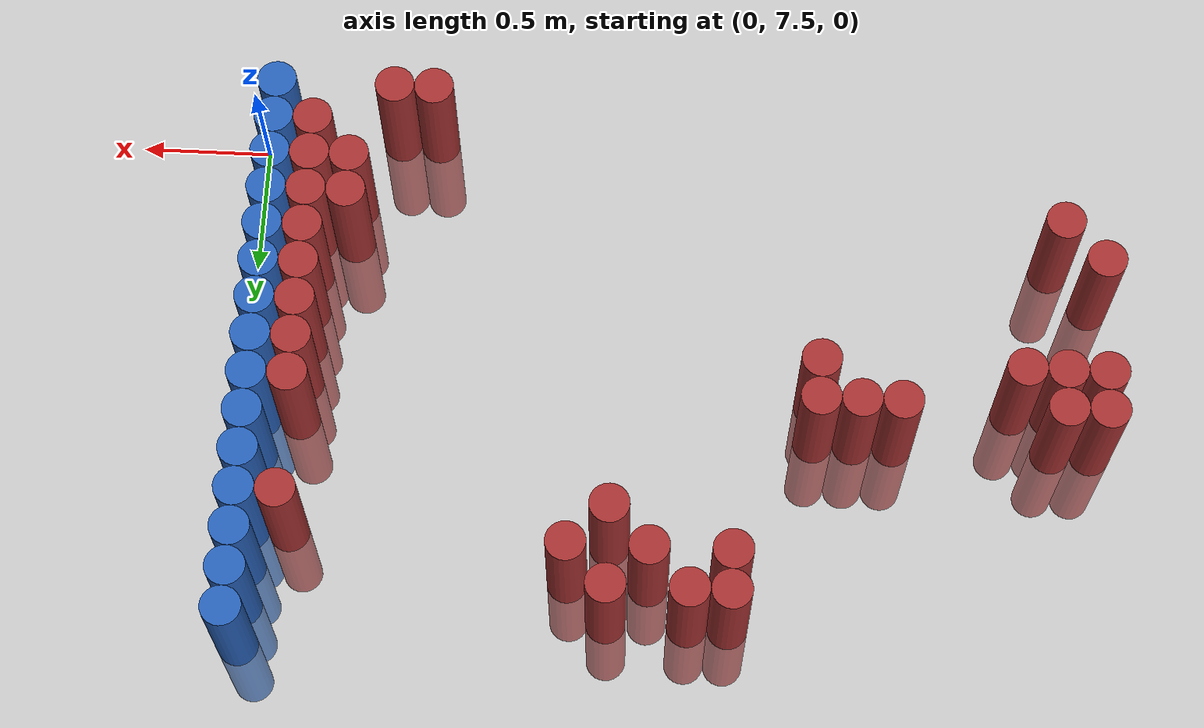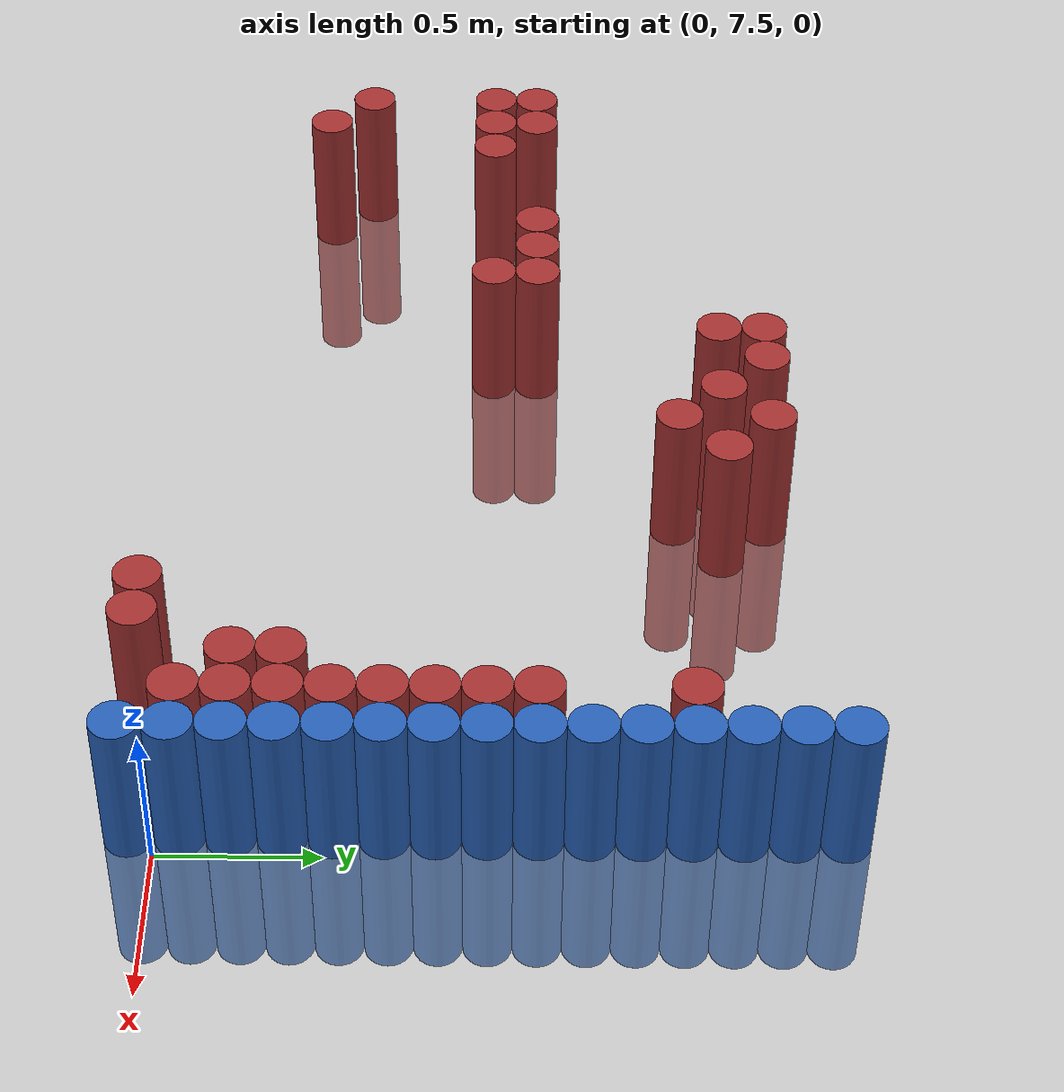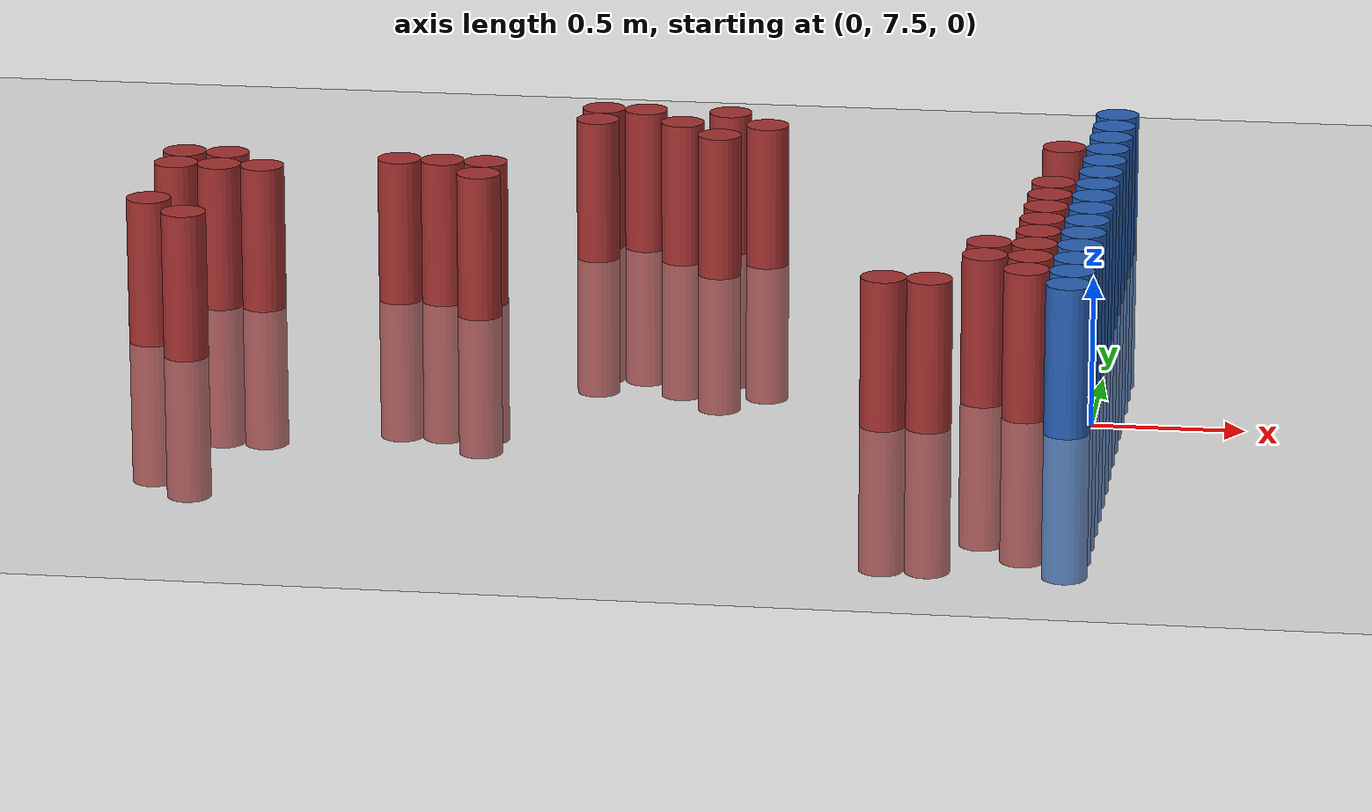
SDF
<sdf version="1.6">
 <world name="default">
  <model name="ground_plane">
   <static>1</static>
   <link name="link">
    <collision name="collision">
     <geometry><plane><normal>0 0 1</normal><size>100 100</size></plane></geometry>
     <surface><friction><ode><mu>100</mu><mu2>50</mu2></ode></friction></surface>
    </collision>
    <visual name="visual">
     <cast_shadows>0</cast_shadows>
     <geometry><plane><normal>0 0 1</normal><size>100 100</size></plane></geometry>
     <material>
      <script><uri>file://media/materials/scripts/gazebo.material</uri><name>Gazebo/Grey</name></script>
     </material>
    </visual>
   </link>
  </model>
  <model name="unit_cylinder_160">
   <static>1</static>
   <pose>-3.225000 8.025000 0.000000 0.000000 0.000000 0.000000</pose>
   <link name="link">
    <inertial>
     <mass>1</mass>
     <inertia><ixx>0.145833</ixx><ixy>0</ixy><ixz>0</ixz><iyy>0.145833</iyy><iyz>0</iyz><izz>0.125</izz></inertia>
    </inertial>
    <collision name="collision">
     <geometry><cylinder><radius>0.075000</radius><length>1</length></cylinder></geometry>
    </collision>
    <visual name="visual">
     <geometry><cylinder><radius>0.075000</radius><length>1</length></cylinder></geometry>
     <material>
      <ambient>0.648000 0.192000 0.192000 1</ambient>
      <diffuse>0.648000 0.192000 0.192000 1</diffuse>
     </material>
     <material>
      <script><name>Gazebo/Grey</name><uri>file://media/materials/scripts/gazebo.material</uri></script>
     </material>
    </visual>
   </link>
  </model>
  <model name="unit_cylinder_161">
   <static>1</static>
   <pose>-3.225000 8.475000 0.000000 0.000000 0.000000 0.000000</pose>
   <link name="link">
    <inertial>
     <mass>1</mass>
     <inertia><ixx>0.145833</ixx><ixy>0</ixy><ixz>0</ixz><iyy>0.145833</iyy><iyz>0</iyz><izz>0.125</izz></inertia>
    </inertial>
    <collision name="collision">
     <geometry><cylinder><radius>0.075000</radius><length>1</length></cylinder></geometry>
    </collision>
    <visual name="visual">
     <geometry><cylinder><radius>0.075000</radius><length>1</length></cylinder></geometry>
     <material>
      <ambient>0.648000 0.192000 0.192000 1</ambient>
      <diffuse>0.648000 0.192000 0.192000 1</diffuse>
     </material>
     <material>
      <script><name>Gazebo/Grey</name><uri>file://media/materials/scripts/gazebo.material</uri></script>
     </material>
    </visual>
   </link>
  </model>
  <model name="unit_cylinder_162">
   <static>1</static>
   <pose>-3.225000 8.625000 0.000000 0.000000 0.000000 0.000000</pose>
   <link name="link">
    <inertial>
     <mass>1</mass>
     <inertia><ixx>0.145833</ixx><ixy>0</ixy><ixz>0</ixz><iyy>0.145833</iyy><iyz>0</iyz><izz>0.125</izz></inertia>
    </inertial>
    <collision name="collision">
     <geometry><cylinder><radius>0.075000</radius><length>1</length></cylinder></geometry>
    </collision>
    <visual name="visual">
     <geometry><cylinder><radius>0.075000</radius><length>1</length></cylinder></geometry>
     <material>
      <ambient>0.648000 0.192000 0.192000 1</ambient>
      <diffuse>0.648000 0.192000 0.192000 1</diffuse>
     </material>
     <material>
      <script><name>Gazebo/Grey</name><uri>file://media/materials/scripts/gazebo.material</uri></script>
     </material>
    </visual>
   </link>
  </model>
  <model name="unit_cylinder_168">
   <static>1</static>
   <pose>-3.075000 7.875000 0.000000 0.000000 0.000000 0.000000</pose>
   <link name="link">
    <inertial>
     <mass>1</mass>
     <inertia><ixx>0.145833</ixx><ixy>0</ixy><ixz>0</ixz><iyy>0.145833</iyy><iyz>0</iyz><izz>0.125</izz></inertia>
    </inertial>
    <collision name="collision">
     <geometry><cylinder><radius>0.075000</radius><length>1</length></cylinder></geometry>
    </collision>
    <visual name="visual">
     <geometry><cylinder><radius>0.075000</radius><length>1</length></cylinder></geometry>
     <material>
      <ambient>0.648000 0.192000 0.192000 1</ambient>
      <diffuse>0.648000 0.192000 0.192000 1</diffuse>
     </material>
     <material>
      <script><name>Gazebo/Grey</name><uri>file://media/materials/scripts/gazebo.material</uri></script>
     </material>
    </visual>
   </link>
  </model>
  <model name="unit_cylinder_169">
   <static>1</static>
   <pose>-3.075000 8.475000 0.000000 0.000000 0.000000 0.000000</pose>
   <link name="link">
    <inertial>
     <mass>1</mass>
     <inertia><ixx>0.145833</ixx><ixy>0</ixy><ixz>0</ixz><iyy>0.145833</iyy><iyz>0</iyz><izz>0.125</izz></inertia>
    </inertial>
    <collision name="collision">
     <geometry><cylinder><radius>0.075000</radius><length>1</length></cylinder></geometry>
    </collision>
    <visual name="visual">
     <geometry><cylinder><radius>0.075000</radius><length>1</length></cylinder></geometry>
     <material>
      <ambient>0.648000 0.192000 0.192000 1</ambient>
      <diffuse>0.648000 0.192000 0.192000 1</diffuse>
     </material>
     <material>
      <script><name>Gazebo/Grey</name><uri>file://media/materials/scripts/gazebo.material</uri></script>
     </material>
    </visual>
   </link>
  </model>
  <model name="unit_cylinder_170">
   <static>1</static>
   <pose>-3.075000 8.625000 0.000000 0.000000 0.000000 0.000000</pose>
   <link name="link">
    <inertial>
     <mass>1</mass>
     <inertia><ixx>0.145833</ixx><ixy>0</ixy><ixz>0</ixz><iyy>0.145833</iyy><iyz>0</iyz><izz>0.125</izz></inertia>
    </inertial>
    <collision name="collision">
     <geometry><cylinder><radius>0.075000</radius><length>1</length></cylinder></geometry>
    </collision>
    <visual name="visual">
     <geometry><cylinder><radius>0.075000</radius><length>1</length></cylinder></geometry>
     <material>
      <ambient>0.648000 0.192000 0.192000 1</ambient>
      <diffuse>0.648000 0.192000 0.192000 1</diffuse>
     </material>
     <material>
      <script><name>Gazebo/Grey</name><uri>file://media/materials/scripts/gazebo.material</uri></script>
     </material>
    </visual>
   </link>
  </model>
  <model name="unit_cylinder_175">
   <static>1</static>
   <pose>-2.925000 8.475000 0.000000 0.000000 0.000000 0.000000</pose>
   <link name="link">
    <inertial>
     <mass>1</mass>
     <inertia><ixx>0.145833</ixx><ixy>0</ixy><ixz>0</ixz><iyy>0.145833</iyy><iyz>0</iyz><izz>0.125</izz></inertia>
    </inertial>
    <collision name="collision">
     <geometry><cylinder><radius>0.075000</radius><length>1</length></cylinder></geometry>
    </collision>
    <visual name="visual">
     <geometry><cylinder><radius>0.075000</radius><length>1</length></cylinder></geometry>
     <material>
      <ambient>0.648000 0.192000 0.192000 1</ambient>
      <diffuse>0.648000 0.192000 0.192000 1</diffuse>
     </material>
     <material>
      <script><name>Gazebo/Grey</name><uri>file://media/materials/scripts/gazebo.material</uri></script>
     </material>
    </visual>
   </link>
  </model>
  <model name="unit_cylinder_189">
   <static>1</static>
   <pose>-2.475000 8.625000 0.000000 0.000000 0.000000 0.000000</pose>
   <link name="link">
    <inertial>
     <mass>1</mass>
     <inertia><ixx>0.145833</ixx><ixy>0</ixy><ixz>0</ixz><iyy>0.145833</iyy><iyz>0</iyz><izz>0.125</izz></inertia>
    </inertial>
    <collision name="collision">
     <geometry><cylinder><radius>0.075000</radius><length>1</length></cylinder></geometry>
    </collision>
    <visual name="visual">
     <geometry><cylinder><radius>0.075000</radius><length>1</length></cylinder></geometry>
     <material>
      <ambient>0.648000 0.192000 0.192000 1</ambient>
      <diffuse>0.648000 0.192000 0.192000 1</diffuse>
     </material>
     <material>
      <script><name>Gazebo/Grey</name><uri>file://media/materials/scripts/gazebo.material</uri></script>
     </material>
    </visual>
   </link>
  </model>
  <model name="unit_cylinder_191">
   <static>1</static>
   <pose>-2.325000 8.625000 0.000000 0.000000 0.000000 0.000000</pose>
   <link name="link">
    <inertial>
     <mass>1</mass>
     <inertia><ixx>0.145833</ixx><ixy>0</ixy><ixz>0</ixz><iyy>0.145833</iyy><iyz>0</iyz><izz>0.125</izz></inertia>
    </inertial>
    <collision name="collision">
     <geometry><cylinder><radius>0.075000</radius><length>1</length></cylinder></geometry>
    </collision>
    <visual name="visual">
     <geometry><cylinder><radius>0.075000</radius><length>1</length></cylinder></geometry>
     <material>
      <ambient>0.648000 0.192000 0.192000 1</ambient>
      <diffuse>0.648000 0.192000 0.192000 1</diffuse>
     </material>
     <material>
      <script><name>Gazebo/Grey</name><uri>file://media/materials/scripts/gazebo.material</uri></script>
     </material>
    </visual>
   </link>
  </model>
  <model name="unit_cylinder_192">
   <static>1</static>
   <pose>-2.175000 8.475000 0.000000 0.000000 0.000000 0.000000</pose>
   <link name="link">
    <inertial>
     <mass>1</mass>
     <inertia><ixx>0.145833</ixx><ixy>0</ixy><ixz>0</ixz><iyy>0.145833</iyy><iyz>0</iyz><izz>0.125</izz></inertia>
    </inertial>
    <collision name="collision">
     <geometry><cylinder><radius>0.075000</radius><length>1</length></cylinder></geometry>
    </collision>
    <visual name="visual">
     <geometry><cylinder><radius>0.075000</radius><length>1</length></cylinder></geometry>
     <material>
      <ambient>0.648000 0.192000 0.192000 1</ambient>
      <diffuse>0.648000 0.192000 0.192000 1</diffuse>
     </material>
     <material>
      <script><name>Gazebo/Grey</name><uri>file://media/materials/scripts/gazebo.material</uri></script>
     </material>
    </visual>
   </link>
  </model>
  <model name="unit_cylinder_193">
   <static>1</static>
   <pose>-2.175000 8.625000 0.000000 0.000000 0.000000 0.000000</pose>
   <link name="link">
    <inertial>
     <mass>1</mass>
     <inertia><ixx>0.145833</ixx><ixy>0</ixy><ixz>0</ixz><iyy>0.145833</iyy><iyz>0</iyz><izz>0.125</izz></inertia>
    </inertial>
    <collision name="collision">
     <geometry><cylinder><radius>0.075000</radius><length>1</length></cylinder></geometry>
    </collision>
    <visual name="visual">
     <geometry><cylinder><radius>0.075000</radius><length>1</length></cylinder></geometry>
     <material>
      <ambient>0.648000 0.192000 0.192000 1</ambient>
      <diffuse>0.648000 0.192000 0.192000 1</diffuse>
     </material>
     <material>
      <script><name>Gazebo/Grey</name><uri>file://media/materials/scripts/gazebo.material</uri></script>
     </material>
    </visual>
   </link>
  </model>
  <model name="unit_cylinder_194">
   <static>1</static>
   <pose>-1.875000 9.225000 0.000000 0.000000 0.000000 0.000000</pose>
   <link name="link">
    <inertial>
     <mass>1</mass>
     <inertia><ixx>0.145833</ixx><ixy>0</ixy><ixz>0</ixz><iyy>0.145833</iyy><iyz>0</iyz><izz>0.125</izz></inertia>
    </inertial>
    <collision name="collision">
     <geometry><cylinder><radius>0.075000</radius><length>1</length></cylinder></geometry>
    </collision>
    <visual name="visual">
     <geometry><cylinder><radius>0.075000</radius><length>1</length></cylinder></geometry>
     <material>
      <ambient>0.648000 0.192000 0.192000 1</ambient>
      <diffuse>0.648000 0.192000 0.192000 1</diffuse>
     </material>
     <material>
      <script><name>Gazebo/Grey</name><uri>file://media/materials/scripts/gazebo.material</uri></script>
     </material>
    </visual>
   </link>
  </model>
  <model name="unit_cylinder_195">
   <static>1</static>
   <pose>-1.875000 9.375000 0.000000 0.000000 0.000000 0.000000</pose>
   <link name="link">
    <inertial>
     <mass>1</mass>
     <inertia><ixx>0.145833</ixx><ixy>0</ixy><ixz>0</ixz><iyy>0.145833</iyy><iyz>0</iyz><izz>0.125</izz></inertia>
    </inertial>
    <collision name="collision">
     <geometry><cylinder><radius>0.075000</radius><length>1</length></cylinder></geometry>
    </collision>
    <visual name="visual">
     <geometry><cylinder><radius>0.075000</radius><length>1</length></cylinder></geometry>
     <material>
      <ambient>0.648000 0.192000 0.192000 1</ambient>
      <diffuse>0.648000 0.192000 0.192000 1</diffuse>
     </material>
     <material>
      <script><name>Gazebo/Grey</name><uri>file://media/materials/scripts/gazebo.material</uri></script>
     </material>
    </visual>
   </link>
  </model>
  <model name="unit_cylinder_196">
   <static>1</static>
   <pose>-1.725000 9.375000 0.000000 0.000000 0.000000 0.000000</pose>
   <link name="link">
    <inertial>
     <mass>1</mass>
     <inertia><ixx>0.145833</ixx><ixy>0</ixy><ixz>0</ixz><iyy>0.145833</iyy><iyz>0</iyz><izz>0.125</izz></inertia>
    </inertial>
    <collision name="collision">
     <geometry><cylinder><radius>0.075000</radius><length>1</length></cylinder></geometry>
    </collision>
    <visual name="visual">
     <geometry><cylinder><radius>0.075000</radius><length>1</length></cylinder></geometry>
     <material>
      <ambient>0.648000 0.192000 0.192000 1</ambient>
      <diffuse>0.648000 0.192000 0.192000 1</diffuse>
     </material>
     <material>
      <script><name>Gazebo/Grey</name><uri>file://media/materials/scripts/gazebo.material</uri></script>
     </material>
    </visual>
   </link>
  </model>
  <model name="unit_cylinder_198">
   <static>1</static>
   <pose>-1.575000 9.225000 0.000000 0.000000 0.000000 0.000000</pose>
   <link name="link">
    <inertial>
     <mass>1</mass>
     <inertia><ixx>0.145833</ixx><ixy>0</ixy><ixz>0</ixz><iyy>0.145833</iyy><iyz>0</iyz><izz>0.125</izz></inertia>
    </inertial>
    <collision name="collision">
     <geometry><cylinder><radius>0.075000</radius><length>1</length></cylinder></geometry>
    </collision>
    <visual name="visual">
     <geometry><cylinder><radius>0.075000</radius><length>1</length></cylinder></geometry>
     <material>
      <ambient>0.648000 0.192000 0.192000 1</ambient>
      <diffuse>0.648000 0.192000 0.192000 1</diffuse>
     </material>
     <material>
      <script><name>Gazebo/Grey</name><uri>file://media/materials/scripts/gazebo.material</uri></script>
     </material>
    </visual>
   </link>
  </model>
  <model name="unit_cylinder_201">
   <static>1</static>
   <pose>-1.425000 9.075000 0.000000 0.000000 0.000000 0.000000</pose>
   <link name="link">
    <inertial>
     <mass>1</mass>
     <inertia><ixx>0.145833</ixx><ixy>0</ixy><ixz>0</ixz><iyy>0.145833</iyy><iyz>0</iyz><izz>0.125</izz></inertia>
    </inertial>
    <collision name="collision">
     <geometry><cylinder><radius>0.075000</radius><length>1</length></cylinder></geometry>
    </collision>
    <visual name="visual">
     <geometry><cylinder><radius>0.075000</radius><length>1</length></cylinder></geometry>
     <material>
      <ambient>0.648000 0.192000 0.192000 1</ambient>
      <diffuse>0.648000 0.192000 0.192000 1</diffuse>
     </material>
     <material>
      <script><name>Gazebo/Grey</name><uri>file://media/materials/scripts/gazebo.material</uri></script>
     </material>
    </visual>
   </link>
  </model>
  <model name="unit_cylinder_202">
   <static>1</static>
   <pose>-1.425000 9.375000 0.000000 0.000000 0.000000 0.000000</pose>
   <link name="link">
    <inertial>
     <mass>1</mass>
     <inertia><ixx>0.145833</ixx><ixy>0</ixy><ixz>0</ixz><iyy>0.145833</iyy><iyz>0</iyz><izz>0.125</izz></inertia>
    </inertial>
    <collision name="collision">
     <geometry><cylinder><radius>0.075000</radius><length>1</length></cylinder></geometry>
    </collision>
    <visual name="visual">
     <geometry><cylinder><radius>0.075000</radius><length>1</length></cylinder></geometry>
     <material>
      <ambient>0.648000 0.192000 0.192000 1</ambient>
      <diffuse>0.648000 0.192000 0.192000 1</diffuse>
     </material>
     <material>
      <script><name>Gazebo/Grey</name><uri>file://media/materials/scripts/gazebo.material</uri></script>
     </material>
    </visual>
   </link>
  </model>
  <model name="unit_cylinder_208">
   <static>1</static>
   <pose>-1.275000 9.225000 0.000000 0.000000 0.000000 0.000000</pose>
   <link name="link">
    <inertial>
     <mass>1</mass>
     <inertia><ixx>0.145833</ixx><ixy>0</ixy><ixz>0</ixz><iyy>0.145833</iyy><iyz>0</iyz><izz>0.125</izz></inertia>
    </inertial>
    <collision name="collision">
     <geometry><cylinder><radius>0.075000</radius><length>1</length></cylinder></geometry>
    </collision>
    <visual name="visual">
     <geometry><cylinder><radius>0.075000</radius><length>1</length></cylinder></geometry>
     <material>
      <ambient>0.648000 0.192000 0.192000 1</ambient>
      <diffuse>0.648000 0.192000 0.192000 1</diffuse>
     </material>
     <material>
      <script><name>Gazebo/Grey</name><uri>file://media/materials/scripts/gazebo.material</uri></script>
     </material>
    </visual>
   </link>
  </model>
  <model name="unit_cylinder_222">
   <static>1</static>
   <pose>-0.675000 7.425000 0.000000 0.000000 0.000000 0.000000</pose>
   <link name="link">
    <inertial>
     <mass>1</mass>
     <inertia><ixx>0.145833</ixx><ixy>0</ixy><ixz>0</ixz><iyy>0.145833</iyy><iyz>0</iyz><izz>0.125</izz></inertia>
    </inertial>
    <collision name="collision">
     <geometry><cylinder><radius>0.075000</radius><length>1</length></cylinder></geometry>
    </collision>
    <visual name="visual">
     <geometry><cylinder><radius>0.075000</radius><length>1</length></cylinder></geometry>
     <material>
      <ambient>0.648000 0.192000 0.192000 1</ambient>
      <diffuse>0.648000 0.192000 0.192000 1</diffuse>
     </material>
     <material>
      <script><name>Gazebo/Grey</name><uri>file://media/materials/scripts/gazebo.material</uri></script>
     </material>
    </visual>
   </link>
  </model>
  <model name="unit_cylinder_223">
   <static>1</static>
   <pose>-0.525000 7.425000 0.000000 0.000000 0.000000 0.000000</pose>
   <link name="link">
    <inertial>
     <mass>1</mass>
     <inertia><ixx>0.145833</ixx><ixy>0</ixy><ixz>0</ixz><iyy>0.145833</iyy><iyz>0</iyz><izz>0.125</izz></inertia>
    </inertial>
    <collision name="collision">
     <geometry><cylinder><radius>0.075000</radius><length>1</length></cylinder></geometry>
    </collision>
    <visual name="visual">
     <geometry><cylinder><radius>0.075000</radius><length>1</length></cylinder></geometry>
     <material>
      <ambient>0.648000 0.192000 0.192000 1</ambient>
      <diffuse>0.648000 0.192000 0.192000 1</diffuse>
     </material>
     <material>
      <script><name>Gazebo/Grey</name><uri>file://media/materials/scripts/gazebo.material</uri></script>
     </material>
    </visual>
   </link>
  </model>
  <model name="unit_cylinder_226">
   <static>1</static>
   <pose>-0.375000 7.725000 0.000000 0.000000 0.000000 0.000000</pose>
   <link name="link">
    <inertial>
     <mass>1</mass>
     <inertia><ixx>0.145833</ixx><ixy>0</ixy><ixz>0</ixz><iyy>0.145833</iyy><iyz>0</iyz><izz>0.125</izz></inertia>
    </inertial>
    <collision name="collision">
     <geometry><cylinder><radius>0.075000</radius><length>1</length></cylinder></geometry>
    </collision>
    <visual name="visual">
     <geometry><cylinder><radius>0.075000</radius><length>1</length></cylinder></geometry>
     <material>
      <ambient>0.648000 0.192000 0.192000 1</ambient>
      <diffuse>0.648000 0.192000 0.192000 1</diffuse>
     </material>
     <material>
      <script><name>Gazebo/Grey</name><uri>file://media/materials/scripts/gazebo.material</uri></script>
     </material>
    </visual>
   </link>
  </model>
  <model name="unit_cylinder_227">
   <static>1</static>
   <pose>-0.375000 7.875000 0.000000 0.000000 0.000000 0.000000</pose>
   <link name="link">
    <inertial>
     <mass>1</mass>
     <inertia><ixx>0.145833</ixx><ixy>0</ixy><ixz>0</ixz><iyy>0.145833</iyy><iyz>0</iyz><izz>0.125</izz></inertia>
    </inertial>
    <collision name="collision">
     <geometry><cylinder><radius>0.075000</radius><length>1</length></cylinder></geometry>
    </collision>
    <visual name="visual">
     <geometry><cylinder><radius>0.075000</radius><length>1</length></cylinder></geometry>
     <material>
      <ambient>0.648000 0.192000 0.192000 1</ambient>
      <diffuse>0.648000 0.192000 0.192000 1</diffuse>
     </material>
     <material>
      <script><name>Gazebo/Grey</name><uri>file://media/materials/scripts/gazebo.material</uri></script>
     </material>
    </visual>
   </link>
  </model>
  <model name="unit_cylinder_235">
   <static>1</static>
   <pose>-0.225000 7.575000 0.000000 0.000000 0.000000 0.000000</pose>
   <link name="link">
    <inertial>
     <mass>1</mass>
     <inertia><ixx>0.145833</ixx><ixy>0</ixy><ixz>0</ixz><iyy>0.145833</iyy><iyz>0</iyz><izz>0.125</izz></inertia>
    </inertial>
    <collision name="collision">
     <geometry><cylinder><radius>0.075000</radius><length>1</length></cylinder></geometry>
    </collision>
    <visual name="visual">
     <geometry><cylinder><radius>0.075000</radius><length>1</length></cylinder></geometry>
     <material>
      <ambient>0.648000 0.192000 0.192000 1</ambient>
      <diffuse>0.648000 0.192000 0.192000 1</diffuse>
     </material>
     <material>
      <script><name>Gazebo/Grey</name><uri>file://media/materials/scripts/gazebo.material</uri></script>
     </material>
    </visual>
   </link>
  </model>
  <model name="unit_cylinder_236">
   <static>1</static>
   <pose>-0.225000 7.725000 0.000000 0.000000 0.000000 0.000000</pose>
   <link name="link">
    <inertial>
     <mass>1</mass>
     <inertia><ixx>0.145833</ixx><ixy>0</ixy><ixz>0</ixz><iyy>0.145833</iyy><iyz>0</iyz><izz>0.125</izz></inertia>
    </inertial>
    <collision name="collision">
     <geometry><cylinder><radius>0.075000</radius><length>1</length></cylinder></geometry>
    </collision>
    <visual name="visual">
     <geometry><cylinder><radius>0.075000</radius><length>1</length></cylinder></geometry>
     <material>
      <ambient>0.648000 0.192000 0.192000 1</ambient>
      <diffuse>0.648000 0.192000 0.192000 1</diffuse>
     </material>
     <material>
      <script><name>Gazebo/Grey</name><uri>file://media/materials/scripts/gazebo.material</uri></script>
     </material>
    </visual>
   </link>
  </model>
  <model name="unit_cylinder_237">
   <static>1</static>
   <pose>-0.225000 7.875000 0.000000 0.000000 0.000000 0.000000</pose>
   <link name="link">
    <inertial>
     <mass>1</mass>
     <inertia><ixx>0.145833</ixx><ixy>0</ixy><ixz>0</ixz><iyy>0.145833</iyy><iyz>0</iyz><izz>0.125</izz></inertia>
    </inertial>
    <collision name="collision">
     <geometry><cylinder><radius>0.075000</radius><length>1</length></cylinder></geometry>
    </collision>
    <visual name="visual">
     <geometry><cylinder><radius>0.075000</radius><length>1</length></cylinder></geometry>
     <material>
      <ambient>0.648000 0.192000 0.192000 1</ambient>
      <diffuse>0.648000 0.192000 0.192000 1</diffuse>
     </material>
     <material>
      <script><name>Gazebo/Grey</name><uri>file://media/materials/scripts/gazebo.material</uri></script>
     </material>
    </visual>
   </link>
  </model>
  <model name="unit_cylinder_238">
   <static>1</static>
   <pose>-0.225000 8.025000 0.000000 0.000000 0.000000 0.000000</pose>
   <link name="link">
    <inertial>
     <mass>1</mass>
     <inertia><ixx>0.145833</ixx><ixy>0</ixy><ixz>0</ixz><iyy>0.145833</iyy><iyz>0</iyz><izz>0.125</izz></inertia>
    </inertial>
    <collision name="collision">
     <geometry><cylinder><radius>0.075000</radius><length>1</length></cylinder></geometry>
    </collision>
    <visual name="visual">
     <geometry><cylinder><radius>0.075000</radius><length>1</length></cylinder></geometry>
     <material>
      <ambient>0.648000 0.192000 0.192000 1</ambient>
      <diffuse>0.648000 0.192000 0.192000 1</diffuse>
     </material>
     <material>
      <script><name>Gazebo/Grey</name><uri>file://media/materials/scripts/gazebo.material</uri></script>
     </material>
    </visual>
   </link>
  </model>
  <model name="unit_cylinder_239">
   <static>1</static>
   <pose>-0.225000 8.175000 0.000000 0.000000 0.000000 0.000000</pose>
   <link name="link">
    <inertial>
     <mass>1</mass>
     <inertia><ixx>0.145833</ixx><ixy>0</ixy><ixz>0</ixz><iyy>0.145833</iyy><iyz>0</iyz><izz>0.125</izz></inertia>
    </inertial>
    <collision name="collision">
     <geometry><cylinder><radius>0.075000</radius><length>1</length></cylinder></geometry>
    </collision>
    <visual name="visual">
     <geometry><cylinder><radius>0.075000</radius><length>1</length></cylinder></geometry>
     <material>
      <ambient>0.648000 0.192000 0.192000 1</ambient>
      <diffuse>0.648000 0.192000 0.192000 1</diffuse>
     </material>
     <material>
      <script><name>Gazebo/Grey</name><uri>file://media/materials/scripts/gazebo.material</uri></script>
     </material>
    </visual>
   </link>
  </model>
  <model name="unit_cylinder_240">
   <static>1</static>
   <pose>-0.225000 8.325000 0.000000 0.000000 0.000000 0.000000</pose>
   <link name="link">
    <inertial>
     <mass>1</mass>
     <inertia><ixx>0.145833</ixx><ixy>0</ixy><ixz>0</ixz><iyy>0.145833</iyy><iyz>0</iyz><izz>0.125</izz></inertia>
    </inertial>
    <collision name="collision">
     <geometry><cylinder><radius>0.075000</radius><length>1</length></cylinder></geometry>
    </collision>
    <visual name="visual">
     <geometry><cylinder><radius>0.075000</radius><length>1</length></cylinder></geometry>
     <material>
      <ambient>0.648000 0.192000 0.192000 1</ambient>
      <diffuse>0.648000 0.192000 0.192000 1</diffuse>
     </material>
     <material>
      <script><name>Gazebo/Grey</name><uri>file://media/materials/scripts/gazebo.material</uri></script>
     </material>
    </visual>
   </link>
  </model>
  <model name="unit_cylinder_241">
   <static>1</static>
   <pose>-0.225000 8.475000 0.000000 0.000000 0.000000 0.000000</pose>
   <link name="link">
    <inertial>
     <mass>1</mass>
     <inertia><ixx>0.145833</ixx><ixy>0</ixy><ixz>0</ixz><iyy>0.145833</iyy><iyz>0</iyz><izz>0.125</izz></inertia>
    </inertial>
    <collision name="collision">
     <geometry><cylinder><radius>0.075000</radius><length>1</length></cylinder></geometry>
    </collision>
    <visual name="visual">
     <geometry><cylinder><radius>0.075000</radius><length>1</length></cylinder></geometry>
     <material>
      <ambient>0.648000 0.192000 0.192000 1</ambient>
      <diffuse>0.648000 0.192000 0.192000 1</diffuse>
     </material>
     <material>
      <script><name>Gazebo/Grey</name><uri>file://media/materials/scripts/gazebo.material</uri></script>
     </material>
    </visual>
   </link>
  </model>
  <model name="unit_cylinder_242">
   <static>1</static>
   <pose>-0.225000 8.625000 0.000000 0.000000 0.000000 0.000000</pose>
   <link name="link">
    <inertial>
     <mass>1</mass>
     <inertia><ixx>0.145833</ixx><ixy>0</ixy><ixz>0</ixz><iyy>0.145833</iyy><iyz>0</iyz><izz>0.125</izz></inertia>
    </inertial>
    <collision name="collision">
     <geometry><cylinder><radius>0.075000</radius><length>1</length></cylinder></geometry>
    </collision>
    <visual name="visual">
     <geometry><cylinder><radius>0.075000</radius><length>1</length></cylinder></geometry>
     <material>
      <ambient>0.648000 0.192000 0.192000 1</ambient>
      <diffuse>0.648000 0.192000 0.192000 1</diffuse>
     </material>
     <material>
      <script><name>Gazebo/Grey</name><uri>file://media/materials/scripts/gazebo.material</uri></script>
     </material>
    </visual>
   </link>
  </model>
  <model name="unit_cylinder_243">
   <static>1</static>
   <pose>-0.225000 9.075000 0.000000 0.000000 0.000000 0.000000</pose>
   <link name="link">
    <inertial>
     <mass>1</mass>
     <inertia><ixx>0.145833</ixx><ixy>0</ixy><ixz>0</ixz><iyy>0.145833</iyy><iyz>0</iyz><izz>0.125</izz></inertia>
    </inertial>
    <collision name="collision">
     <geometry><cylinder><radius>0.075000</radius><length>1</length></cylinder></geometry>
    </collision>
    <visual name="visual">
     <geometry><cylinder><radius>0.075000</radius><length>1</length></cylinder></geometry>
     <material>
      <ambient>0.648000 0.192000 0.192000 1</ambient>
      <diffuse>0.648000 0.192000 0.192000 1</diffuse>
     </material>
     <material>
      <script><name>Gazebo/Grey</name><uri>file://media/materials/scripts/gazebo.material</uri></script>
     </material>
    </visual>
   </link>
  </model>
  <model name="unit_cylinder_259">
   <static>1</static>
   <pose>-0.075000 7.425000 0.000000 0.000000 0.000000 0.000000</pose>
   <link name="link">
    <inertial>
     <mass>1</mass>
     <inertia><ixx>0.145833</ixx><ixy>0</ixy><ixz>0</ixz><iyy>0.145833</iyy><iyz>0</iyz><izz>0.125</izz></inertia>
    </inertial>
    <collision name="collision">
     <geometry><cylinder><radius>0.075000</radius><length>1</length></cylinder></geometry>
    </collision>
    <visual name="visual">
     <geometry><cylinder><radius>0.075000</radius><length>1</length></cylinder></geometry>
     <material>
      <ambient>0.152000 0.379000 0.720000 1</ambient>
      <diffuse>0.152000 0.379000 0.720000 1</diffuse>
     </material>
     <material>
      <script><name>Gazebo/Grey</name><uri>file://media/materials/scripts/gazebo.material</uri></script>
     </material>
    </visual>
   </link>
  </model>
  <model name="unit_cylinder_260">
   <static>1</static>
   <pose>-0.075000 7.575000 0.000000 0.000000 0.000000 0.000000</pose>
   <link name="link">
    <inertial>
     <mass>1</mass>
     <inertia><ixx>0.145833</ixx><ixy>0</ixy><ixz>0</ixz><iyy>0.145833</iyy><iyz>0</iyz><izz>0.125</izz></inertia>
    </inertial>
    <collision name="collision">
     <geometry><cylinder><radius>0.075000</radius><length>1</length></cylinder></geometry>
    </collision>
    <visual name="visual">
     <geometry><cylinder><radius>0.075000</radius><length>1</length></cylinder></geometry>
     <material>
      <ambient>0.152000 0.379000 0.720000 1</ambient>
      <diffuse>0.152000 0.379000 0.720000 1</diffuse>
     </material>
     <material>
      <script><name>Gazebo/Grey</name><uri>file://media/materials/scripts/gazebo.material</uri></script>
     </material>
    </visual>
   </link>
  </model>
  <model name="unit_cylinder_261">
   <static>1</static>
   <pose>-0.075000 7.725000 0.000000 0.000000 0.000000 0.000000</pose>
   <link name="link">
    <inertial>
     <mass>1</mass>
     <inertia><ixx>0.145833</ixx><ixy>0</ixy><ixz>0</ixz><iyy>0.145833</iyy><iyz>0</iyz><izz>0.125</izz></inertia>
    </inertial>
    <collision name="collision">
     <geometry><cylinder><radius>0.075000</radius><length>1</length></cylinder></geometry>
    </collision>
    <visual name="visual">
     <geometry><cylinder><radius>0.075000</radius><length>1</length></cylinder></geometry>
     <material>
      <ambient>0.152000 0.379000 0.720000 1</ambient>
      <diffuse>0.152000 0.379000 0.720000 1</diffuse>
     </material>
     <material>
      <script><name>Gazebo/Grey</name><uri>file://media/materials/scripts/gazebo.material</uri></script>
     </material>
    </visual>
   </link>
  </model>
  <model name="unit_cylinder_262">
   <static>1</static>
   <pose>-0.075000 7.875000 0.000000 0.000000 0.000000 0.000000</pose>
   <link name="link">
    <inertial>
     <mass>1</mass>
     <inertia><ixx>0.145833</ixx><ixy>0</ixy><ixz>0</ixz><iyy>0.145833</iyy><iyz>0</iyz><izz>0.125</izz></inertia>
    </inertial>
    <collision name="collision">
     <geometry><cylinder><radius>0.075000</radius><length>1</length></cylinder></geometry>
    </collision>
    <visual name="visual">
     <geometry><cylinder><radius>0.075000</radius><length>1</length></cylinder></geometry>
     <material>
      <ambient>0.152000 0.379000 0.720000 1</ambient>
      <diffuse>0.152000 0.379000 0.720000 1</diffuse>
     </material>
     <material>
      <script><name>Gazebo/Grey</name><uri>file://media/materials/scripts/gazebo.material</uri></script>
     </material>
    </visual>
   </link>
  </model>
  <model name="unit_cylinder_263">
   <static>1</static>
   <pose>-0.075000 8.025000 0.000000 0.000000 0.000000 0.000000</pose>
   <link name="link">
    <inertial>
     <mass>1</mass>
     <inertia><ixx>0.145833</ixx><ixy>0</ixy><ixz>0</ixz><iyy>0.145833</iyy><iyz>0</iyz><izz>0.125</izz></inertia>
    </inertial>
    <collision name="collision">
     <geometry><cylinder><radius>0.075000</radius><length>1</length></cylinder></geometry>
    </collision>
    <visual name="visual">
     <geometry><cylinder><radius>0.075000</radius><length>1</length></cylinder></geometry>
     <material>
      <ambient>0.152000 0.379000 0.720000 1</ambient>
      <diffuse>0.152000 0.379000 0.720000 1</diffuse>
     </material>
     <material>
      <script><name>Gazebo/Grey</name><uri>file://media/materials/scripts/gazebo.material</uri></script>
     </material>
    </visual>
   </link>
  </model>
  <model name="unit_cylinder_264">
   <static>1</static>
   <pose>-0.075000 8.175000 0.000000 0.000000 0.000000 0.000000</pose>
   <link name="link">
    <inertial>
     <mass>1</mass>
     <inertia><ixx>0.145833</ixx><ixy>0</ixy><ixz>0</ixz><iyy>0.145833</iyy><iyz>0</iyz><izz>0.125</izz></inertia>
    </inertial>
    <collision name="collision">
     <geometry><cylinder><radius>0.075000</radius><length>1</length></cylinder></geometry>
    </collision>
    <visual name="visual">
     <geometry><cylinder><radius>0.075000</radius><length>1</length></cylinder></geometry>
     <material>
      <ambient>0.152000 0.379000 0.720000 1</ambient>
      <diffuse>0.152000 0.379000 0.720000 1</diffuse>
     </material>
     <material>
      <script><name>Gazebo/Grey</name><uri>file://media/materials/scripts/gazebo.material</uri></script>
     </material>
    </visual>
   </link>
  </model>
  <model name="unit_cylinder_265">
   <static>1</static>
   <pose>-0.075000 8.325000 0.000000 0.000000 0.000000 0.000000</pose>
   <link name="link">
    <inertial>
     <mass>1</mass>
     <inertia><ixx>0.145833</ixx><ixy>0</ixy><ixz>0</ixz><iyy>0.145833</iyy><iyz>0</iyz><izz>0.125</izz></inertia>
    </inertial>
    <collision name="collision">
     <geometry><cylinder><radius>0.075000</radius><length>1</length></cylinder></geometry>
    </collision>
    <visual name="visual">
     <geometry><cylinder><radius>0.075000</radius><length>1</length></cylinder></geometry>
     <material>
      <ambient>0.152000 0.379000 0.720000 1</ambient>
      <diffuse>0.152000 0.379000 0.720000 1</diffuse>
     </material>
     <material>
      <script><name>Gazebo/Grey</name><uri>file://media/materials/scripts/gazebo.material</uri></script>
     </material>
    </visual>
   </link>
  </model>
  <model name="unit_cylinder_266">
   <static>1</static>
   <pose>-0.075000 8.475000 0.000000 0.000000 0.000000 0.000000</pose>
   <link name="link">
    <inertial>
     <mass>1</mass>
     <inertia><ixx>0.145833</ixx><ixy>0</ixy><ixz>0</ixz><iyy>0.145833</iyy><iyz>0</iyz><izz>0.125</izz></inertia>
    </inertial>
    <collision name="collision">
     <geometry><cylinder><radius>0.075000</radius><length>1</length></cylinder></geometry>
    </collision>
    <visual name="visual">
     <geometry><cylinder><radius>0.075000</radius><length>1</length></cylinder></geometry>
     <material>
      <ambient>0.152000 0.379000 0.720000 1</ambient>
      <diffuse>0.152000 0.379000 0.720000 1</diffuse>
     </material>
     <material>
      <script><name>Gazebo/Grey</name><uri>file://media/materials/scripts/gazebo.material</uri></script>
     </material>
    </visual>
   </link>
  </model>
  <model name="unit_cylinder_267">
   <static>1</static>
   <pose>-0.075000 8.625000 0.000000 0.000000 0.000000 0.000000</pose>
   <link name="link">
    <inertial>
     <mass>1</mass>
     <inertia><ixx>0.145833</ixx><ixy>0</ixy><ixz>0</ixz><iyy>0.145833</iyy><iyz>0</iyz><izz>0.125</izz></inertia>
    </inertial>
    <collision name="collision">
     <geometry><cylinder><radius>0.075000</radius><length>1</length></cylinder></geometry>
    </collision>
    <visual name="visual">
     <geometry><cylinder><radius>0.075000</radius><length>1</length></cylinder></geometry>
     <material>
      <ambient>0.152000 0.379000 0.720000 1</ambient>
      <diffuse>0.152000 0.379000 0.720000 1</diffuse>
     </material>
     <material>
      <script><name>Gazebo/Grey</name><uri>file://media/materials/scripts/gazebo.material</uri></script>
     </material>
    </visual>
   </link>
  </model>
  <model name="unit_cylinder_268">
   <static>1</static>
   <pose>-0.075000 8.775000 0.000000 0.000000 0.000000 0.000000</pose>
   <link name="link">
    <inertial>
     <mass>1</mass>
     <inertia><ixx>0.145833</ixx><ixy>0</ixy><ixz>0</ixz><iyy>0.145833</iyy><iyz>0</iyz><izz>0.125</izz></inertia>
    </inertial>
    <collision name="collision">
     <geometry><cylinder><radius>0.075000</radius><length>1</length></cylinder></geometry>
    </collision>
    <visual name="visual">
     <geometry><cylinder><radius>0.075000</radius><length>1</length></cylinder></geometry>
     <material>
      <ambient>0.152000 0.379000 0.720000 1</ambient>
      <diffuse>0.152000 0.379000 0.720000 1</diffuse>
     </material>
     <material>
      <script><name>Gazebo/Grey</name><uri>file://media/materials/scripts/gazebo.material</uri></script>
     </material>
    </visual>
   </link>
  </model>
  <model name="unit_cylinder_269">
   <static>1</static>
   <pose>-0.075000 8.925000 0.000000 0.000000 0.000000 0.000000</pose>
   <link name="link">
    <inertial>
     <mass>1</mass>
     <inertia><ixx>0.145833</ixx><ixy>0</ixy><ixz>0</ixz><iyy>0.145833</iyy><iyz>0</iyz><izz>0.125</izz></inertia>
    </inertial>
    <collision name="collision">
     <geometry><cylinder><radius>0.075000</radius><length>1</length></cylinder></geometry>
    </collision>
    <visual name="visual">
     <geometry><cylinder><radius>0.075000</radius><length>1</length></cylinder></geometry>
     <material>
      <ambient>0.152000 0.379000 0.720000 1</ambient>
      <diffuse>0.152000 0.379000 0.720000 1</diffuse>
     </material>
     <material>
      <script><name>Gazebo/Grey</name><uri>file://media/materials/scripts/gazebo.material</uri></script>
     </material>
    </visual>
   </link>
  </model>
  <model name="unit_cylinder_270">
   <static>1</static>
   <pose>-0.075000 9.075000 0.000000 0.000000 0.000000 0.000000</pose>
   <link name="link">
    <inertial>
     <mass>1</mass>
     <inertia><ixx>0.145833</ixx><ixy>0</ixy><ixz>0</ixz><iyy>0.145833</iyy><iyz>0</iyz><izz>0.125</izz></inertia>
    </inertial>
    <collision name="collision">
     <geometry><cylinder><radius>0.075000</radius><length>1</length></cylinder></geometry>
    </collision>
    <visual name="visual">
     <geometry><cylinder><radius>0.075000</radius><length>1</length></cylinder></geometry>
     <material>
      <ambient>0.152000 0.379000 0.720000 1</ambient>
      <diffuse>0.152000 0.379000 0.720000 1</diffuse>
     </material>
     <material>
      <script><name>Gazebo/Grey</name><uri>file://media/materials/scripts/gazebo.material</uri></script>
     </material>
    </visual>
   </link>
  </model>
  <model name="unit_cylinder_271">
   <static>1</static>
   <pose>-0.075000 9.225000 0.000000 0.000000 0.000000 0.000000</pose>
   <link name="link">
    <inertial>
     <mass>1</mass>
     <inertia><ixx>0.145833</ixx><ixy>0</ixy><ixz>0</ixz><iyy>0.145833</iyy><iyz>0</iyz><izz>0.125</izz></inertia>
    </inertial>
    <collision name="collision">
     <geometry><cylinder><radius>0.075000</radius><length>1</length></cylinder></geometry>
    </collision>
    <visual name="visual">
     <geometry><cylinder><radius>0.075000</radius><length>1</length></cylinder></geometry>
     <material>
      <ambient>0.152000 0.379000 0.720000 1</ambient>
      <diffuse>0.152000 0.379000 0.720000 1</diffuse>
     </material>
     <material>
      <script><name>Gazebo/Grey</name><uri>file://media/materials/scripts/gazebo.material</uri></script>
     </material>
    </visual>
   </link>
  </model>
  <model name="unit_cylinder_272">
   <static>1</static>
   <pose>-0.075000 9.375000 0.000000 0.000000 0.000000 0.000000</pose>
   <link name="link">
    <inertial>
     <mass>1</mass>
     <inertia><ixx>0.145833</ixx><ixy>0</ixy><ixz>0</ixz><iyy>0.145833</iyy><iyz>0</iyz><izz>0.125</izz></inertia>
    </inertial>
    <collision name="collision">
     <geometry><cylinder><radius>0.075000</radius><length>1</length></cylinder></geometry>
    </collision>
    <visual name="visual">
     <geometry><cylinder><radius>0.075000</radius><length>1</length></cylinder></geometry>
     <material>
      <ambient>0.152000 0.379000 0.720000 1</ambient>
      <diffuse>0.152000 0.379000 0.720000 1</diffuse>
     </material>
     <material>
      <script><name>Gazebo/Grey</name><uri>file://media/materials/scripts/gazebo.material</uri></script>
     </material>
    </visual>
   </link>
  </model>
  <model name="unit_cylinder_273">
   <static>1</static>
   <pose>-0.075000 9.525000 0.000000 0.000000 0.000000 0.000000</pose>
   <link name="link">
    <inertial>
     <mass>1</mass>
     <inertia><ixx>0.145833</ixx><ixy>0</ixy><ixz>0</ixz><iyy>0.145833</iyy><iyz>0</iyz><izz>0.125</izz></inertia>
    </inertial>
    <collision name="collision">
     <geometry><cylinder><radius>0.075000</radius><length>1</length></cylinder></geometry>
    </collision>
    <visual name="visual">
     <geometry><cylinder><radius>0.075000</radius><length>1</length></cylinder></geometry>
     <material>
      <ambient>0.152000 0.379000 0.720000 1</ambient>
      <diffuse>0.152000 0.379000 0.720000 1</diffuse>
     </material>
     <material>
      <script><name>Gazebo/Grey</name><uri>file://media/materials/scripts/gazebo.material</uri></script>
     </material>
    </visual>
   </link>
  </model>
 </world>
</sdf>
